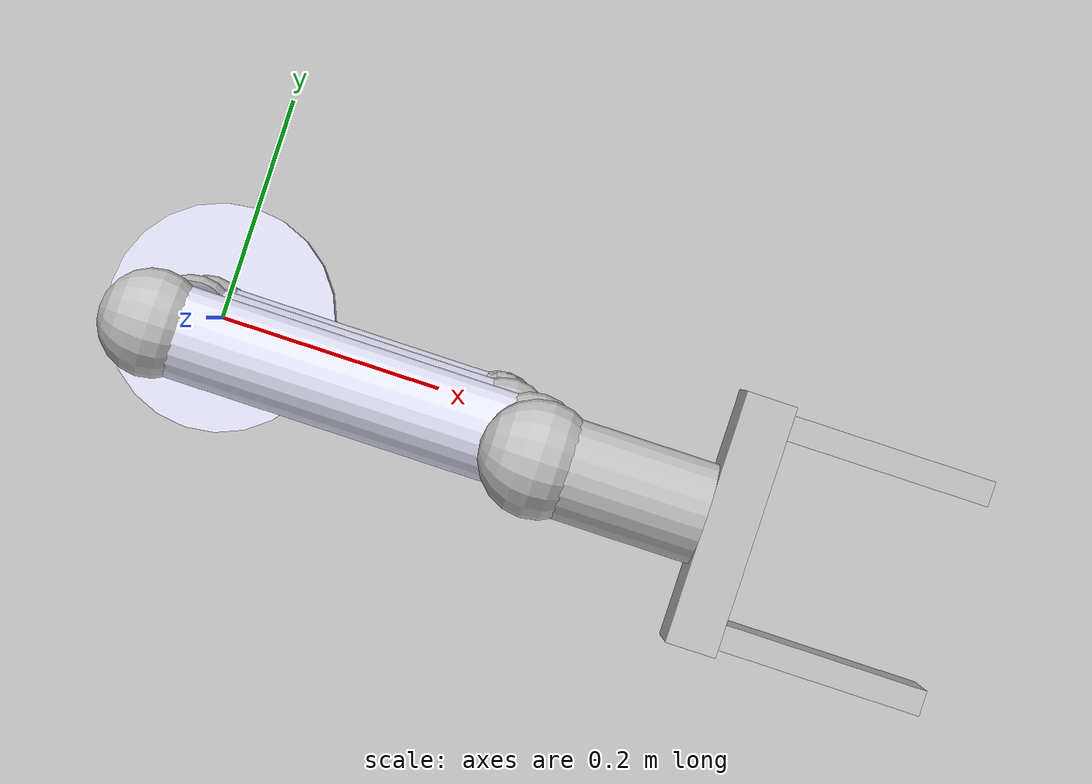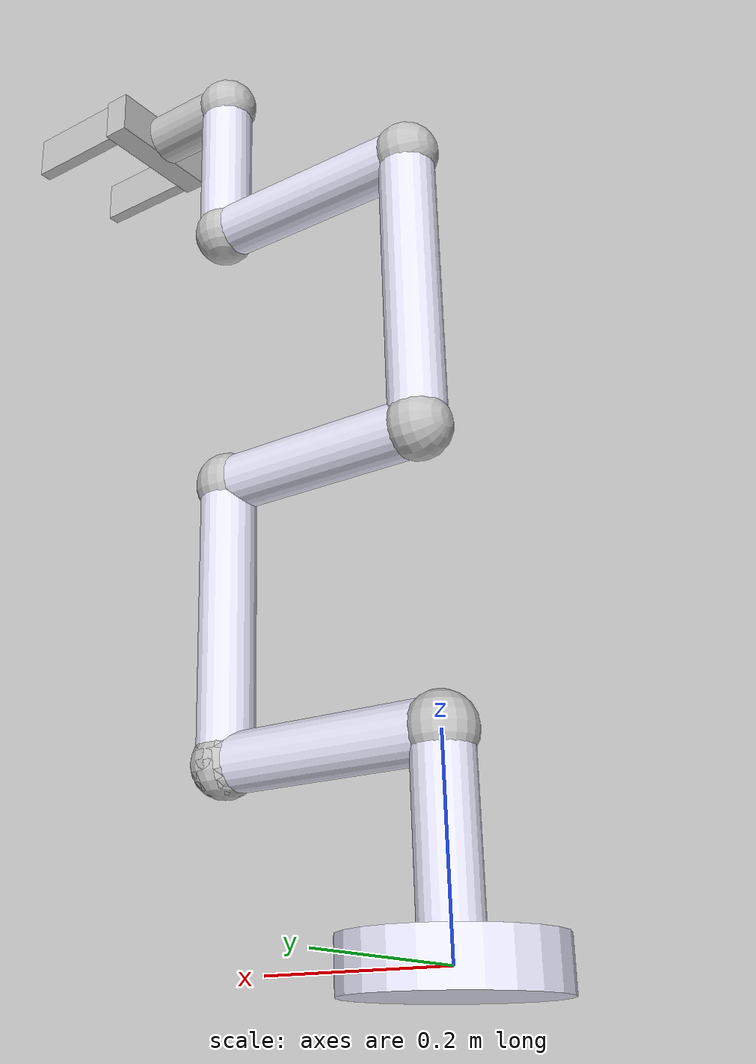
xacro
<?xml version="1.0"?>
<robot xmlns:xacro="http://www.ros.org/wiki/xacro" name="six-axis">
    <xacro:arg name="initial_positions_file" default="initial_positions.yaml" />

    <!-- Import six-axis urdf file -->
    <xacro:include filename="$(find arm_description)/urdf/arm.urdf.xacro" />

    <!-- Import control_xacro -->
    <xacro:include filename="six-axis.ros2_control.xacro" />

    <xacro:six-axis_ros2_control name="FakeSystem" initial_positions_file="$(arg initial_positions_file)"/>

</robot>

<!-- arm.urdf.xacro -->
<robot name="six-axis" xmlns:ros2_control="http://www.ros.org/wiki/ros2_control">

    <material name="gray">
        <color rgba="0.75 0.75 0.75 1.0"/>
    </material>

    <material name="silver">
        <color rgba="0.9 0.9 0.98 1.0"/>
    </material>

    <!-- Base Link -->
    <link name="base_link">
    </link>

    <joint name="j0" type="fixed">
        <origin rpy="0.0 0.0 0.0" xyz="0.0 0.0 0.0"/>
        <parent link="base_link"/>
        <child link="l0"/>
        <axis xyz="0.0 0.0 0.0"/>
        <limit effort="0.0" lower="0.0" upper="0.0" velocity="0.0"/>
    </joint>

    <link name="l0">
        <inertial>
            <origin xyz="0 0 0.025"/>
            <mass value="12.0"/>
            <inertia
                ixx="0.004" ixy="0.0" ixz="0.0"
                iyy="0.004" iyz="0.0"
                izz="0.003"/>
        </inertial>

        <visual>
            <geometry>
                <cylinder length="0.05" radius="0.1"/>
            </geometry>
            <origin rpy="0.0 0.0 0.0" xyz="0.0 0.0 0.0"/>
            <material name="silver"/>
        </visual>
        <collision>
            <geometry>
                <cylinder length="0.05" radius="0.1"/>
            </geometry>
            <origin rpy="0.0 0.0 0.0" xyz="0.0 0.0 0.0"/>
        </collision>
    </link>

    <joint name="j1" type="revolute">
        <origin rpy="0.0 0.0 0.0" xyz="0.0 0.0 0.0"/>
        <parent link="l0"/>
        <child link="l1"/>
        <axis xyz="0.0 0.0 1.0"/>
        <limit effort="20.0" lower="-6.283185307179586" upper="6.283185307179586" velocity="2.0"/>
        <dynamics damping="0.2" friction="0.05"/>
    </joint>

    <link name="l1">
        <inertial>
        <origin xyz="0 0 0.1"/>
        <mass value="2.5"/>
        <inertia
            ixx="0.010" ixy="0.0" ixz="0.0"
            iyy="0.010" iyz="0.0"
            izz="0.006"/>
        </inertial>

        <visual>
            <geometry>
                <cylinder length="0.2" radius="0.03"/>
            </geometry>
            <origin rpy="0.0 0.0 0.0" xyz="0.0 0.0 0.1"/>
            <material name="silver"/>
        </visual>
        <visual>
            <geometry>
                <sphere radius="0.035"/>
            </geometry>
            <origin rpy="0.0 0.0 0.0" xyz="0.0 0.0 0.2"/>
            <material name="gray"/>
        </visual>
        <collision>
            <geometry>
                <cylinder length="0.2" radius="0.03"/>
            </geometry>
            <origin rpy="0.0 0.0 0.0" xyz="0.0 0.0 0.1"/>
        </collision>
        <collision>
            <geometry>
                <sphere radius="0.035"/>
            </geometry>
            <origin rpy="0.0 0.0 0.0" xyz="0.0 0.0 0.2"/>
        </collision>
    </link>

  <!-- Dummy l1 and l2 -->
  <joint name="j_dummy_1_2" type="fixed">
    <origin rpy="0.0 0.0 0.0" xyz="0.0 0.0 0.2"/>
    <parent link="l1"/>
    <child link="l2"/>
  </joint>

  <link name="l2">
    <inertial>
    <origin xyz="0.125 0 0"/>
    <mass value="3.0"/>
    <inertia
        ixx="0.022" ixy="0.0" ixz="0.0"
        iyy="0.030" iyz="0.0"
        izz="0.015"/>
    </inertial>

    <visual>
      <geometry>
        <cylinder length="0.25" radius="0.03"/>
      </geometry>
      <origin rpy="0.0 1.5707963267948966 0.0" xyz="0.125 0.0 0.0"/>
      <material name="silver"/>
    </visual>
    <visual>
      <geometry>
        <sphere radius="0.035"/>
      </geometry>
      <origin rpy="0.0 0.0 0.0" xyz="0.25 0.0 0.0"/>
      <material name="gray"/>
    </visual>
    <collision>
      <geometry>
        <cylinder length="0.25" radius="0.03"/>
      </geometry>
      <origin rpy="0.0 1.5707963267948966 0.0" xyz="0.125 0.0 0.0"/>
    </collision>
    <collision>
      <geometry>
        <sphere radius="0.035"/>
      </geometry>
      <origin rpy="0.0 0.0 0.0" xyz="0.25 0.0 0.0"/>
    </collision>
  </link>

  <joint name="j2" type="revolute">
    <origin rpy="0.0 1.5707963267948966 0.0" xyz="0.25 0.0 0.0"/>
    <parent link="l2"/>
    <child link="l3"/>
    <axis xyz="0.0 0.0 1.0"/>
    <limit effort="20.0" lower="-1.5707963267948966" upper="1.5707963267948966" velocity="2.0"/>
    <dynamics damping="0.2" friction="0.05"/>

  </joint>

  <link name="l3">
    <inertial>
    <origin xyz="-0.15 0 0"/>
    <mass value="2.5"/>
    <inertia
        ixx="0.015" ixy="0.0" ixz="0.0"
        iyy="0.020" iyz="0.0"
        izz="0.010"/>
    </inertial>

    <visual>
      <geometry>
        <cylinder length="0.3" radius="0.03"/>
      </geometry>
      <origin rpy="0.0 1.5707963267948966 0.0" xyz="-0.15 0.0 0.0"/>
      <material name="silver"/>
    </visual>
    <visual>
      <geometry>
        <sphere radius="0.035"/>
      </geometry>
      <origin rpy="0.0 0.0 0.0" xyz="0.0 0.0 0.0"/>
      <material name="gray"/>
    </visual>
    <collision>
      <geometry>
        <cylinder length="0.3" radius="0.03"/>
      </geometry>
      <origin rpy="0.0 1.5707963267948966 0.0" xyz="-0.15 0.0 0.0"/>
    </collision>
    <collision>
      <geometry>
        <sphere radius="0.035"/>
      </geometry>
      <origin rpy="0.0 0.0 0.0" xyz="0.0 0.0 0.0"/>
    </collision>
  </link>

  <joint name="j3" type="revolute">
    <origin rpy="0.0 0.0 0.0" xyz="-0.30 0.0 0.0"/>
    <parent link="l3"/>
    <child link="l4"/>
    <axis xyz="0.0 0.0 1.0"/>
    <limit effort="20.0" lower="-1.5707963267948966" upper="1.5707963267948966" velocity="2.0"/>
    <dynamics damping="0.2" friction="0.05"/>

  </joint>

  <link name="l4">
    <inertial>
    <origin xyz="0 0 -0.12"/>
    <mass value="1.2"/>
    <inertia
        ixx="0.004" ixy="0.0" ixz="0.0"
        iyy="0.006" iyz="0.0"
        izz="0.003"/>
    </inertial>

    <visual>
      <geometry>
        <cylinder length="0.24" radius="0.03"/>
      </geometry>
      <origin rpy="0.0 0.0 0.0" xyz="0.0 0.0 -0.12"/>
      <material name="silver"/>
    </visual>
    <visual>
      <geometry>
        <sphere radius="0.035"/>
      </geometry>
      <origin rpy="0.0 0.0 0.0" xyz="0.0 0.0 0.0"/>
      <material name="gray"/>
    </visual>
    <collision>
      <geometry>
        <cylinder length="0.24" radius="0.03"/>
      </geometry>
      <origin rpy="0.0 0.0 0.0" xyz="0.0 0.0 -0.12"/>
    </collision>
    <collision>
      <geometry>
        <sphere radius="0.035"/>
      </geometry>
      <origin rpy="0.0 0.0 0.0" xyz="0.0 0.0 0.0"/>
    </collision>
  </link>

  <!-- Dummy l4 and l5 -->
  <joint name="j_dummy" type="fixed">
    <origin rpy="0.0 0.0 0.0" xyz="0.0 0.0 -0.24"/>
    <parent link="l4"/>
    <child link="l5"/>
  </joint>

  <link name="l5">
    <inertial>
    <origin xyz="-0.16 0 0"/>
    <mass value="1.0"/>
    <inertia
        ixx="0.003" ixy="0.0" ixz="0.0"
        iyy="0.004" iyz="0.0"
        izz="0.002"/>
    </inertial>

    <visual>
      <geometry>
        <cylinder length="0.32" radius="0.03"/>
      </geometry>
      <origin rpy="0.0 1.5707963267948966 0.0" xyz="-0.16 0.0 0.0"/>
      <material name="silver"/>
    </visual>
    <visual>
      <geometry>
        <sphere radius="0.035"/>
      </geometry>
      <origin rpy="0.0 0.0 0.0" xyz="0.0 0.0 0.0"/>
      <material name="gray"/>
    </visual>
    <collision>
      <geometry>
        <cylinder length="0.32" radius="0.03"/>
      </geometry>
      <origin rpy="0.0 1.5707963267948966 0.0" xyz="-0.16 0.0 0.0"/>
    </collision>
    <collision>
      <geometry>
        <sphere radius="0.035"/>
      </geometry>
      <origin rpy="0.0 0.0 0.0" xyz="0.0 0.0 0.0"/>
    </collision>
  </link>

  <joint name="j4" type="revolute">
    <origin rpy="0.0 0.0 0.0" xyz="-0.32 0.0 0.0"/>
    <parent link="l5"/>
    <child link="l6"/>
    <axis xyz="0.0 0.0 1.0"/>
    <limit effort="20.0" lower="-1.5707963267948966" upper="1.5707963267948966" velocity="2.0"/>
    <dynamics damping="0.2" friction="0.05"/>

  </joint>

  <link name="l6">
    <inertial>
    <origin xyz="0 0 0.125"/>
    <mass value="0.8"/>
    <inertia
        ixx="0.002" ixy="0.0" ixz="0.0"
        iyy="0.002" iyz="0.0"
        izz="0.0015"/>
    </inertial>

    <visual>
      <geometry>
        <cylinder length="0.25" radius="0.03"/>
      </geometry>
      <origin rpy="0.0 0.0 0.0" xyz="0.0 0.0 0.125"/>
      <material name="silver"/>
    </visual>
    <visual>
      <geometry>
        <sphere radius="0.035"/>
      </geometry>
      <origin rpy="0.0 0.0 0.0" xyz="0.0 0.0 0.0"/>
      <material name="gray"/>
    </visual>
    <collision>
      <geometry>
        <cylinder length="0.25" radius="0.03"/>
      </geometry>
      <origin rpy="0.0 0.0 0.0" xyz="0.0 0.0 0.125"/>
    </collision>
    <collision>
      <geometry>
        <sphere radius="0.035"/>
      </geometry>
      <origin rpy="0.0 0.0 0.0" xyz="0.0 0.0 0.0"/>
    </collision>
  </link>

  <joint name="j5" type="revolute">
    <origin rpy="0.0 -1.5707963267948966 0.0" xyz="0.0 0.0 0.25"/>
    <parent link="l6"/>
    <child link="le"/>
    <axis xyz="0.0 0.0 1.0"/>
    <limit effort="20.0" lower="-3.141592653589793" upper="3.141592653589793" velocity="2.0"/>
    <dynamics damping="0.2" friction="0.05"/>

  </joint>

  <link name="le">
    <inertial>
    <origin xyz="0 0 0.09"/>
    <mass value="0.6"/>
    <inertia
        ixx="0.0015" ixy="0.0" ixz="0.0"
        iyy="0.0015" iyz="0.0"
        izz="0.0010"/>
    </inertial>

    <visual>
      <geometry>
        <cylinder length="0.18" radius="0.03"/>
      </geometry>
      <origin rpy="0.0 0.0 0.0" xyz="0.0 0.0 0.09"/>
      <material name="silver"/>
    </visual>
    <visual>
      <geometry>
        <sphere radius="0.035"/>
      </geometry>
      <origin rpy="0.0 0.0 0.0" xyz="0.0 0.0 0.0"/>
      <material name="gray"/>
    </visual>
    <collision>
      <geometry>
        <cylinder length="0.18" radius="0.03"/>
      </geometry>
      <origin rpy="0.0 0.0 0.0" xyz="0.0 0.0 0.09"/>
    </collision>
    <collision>
      <geometry>
        <sphere radius="0.035"/>
      </geometry>
      <origin rpy="0.0 0.0 0.0" xyz="0.0 0.0 0.0"/>
    </collision>
  </link>

  <joint name="j6" type="revolute">
    <origin rpy="0.0 1.5707963267948966 0.0" xyz="0.0 0.0 0.18"/>
    <parent link="le"/>
    <child link="le_1"/>
    <axis xyz="0.0 0.0 1.0"/>
    <limit effort="20.0" lower="-6.283185307179586" upper="6.283185307179586" velocity="2.0"/>
    <dynamics damping="0.2" friction="0.05"/>

  </joint>

  <link name="le_1">
    <inertial>
    <origin xyz="0 0 0.05"/>
    <mass value="0.4"/>
    <inertia
        ixx="0.0010" ixy="0.0" ixz="0.0"
        iyy="0.0010" iyz="0.0"
        izz="0.0007"/>
    </inertial>

    <visual>
      <geometry>
        <cylinder length="0.1" radius="0.03"/>
      </geometry>
      <origin rpy="0.0 0.0 0.0" xyz="0.0 0.0 0.05"/>
      <material name="gray"/>
    </visual>
    <visual>
      <geometry>
        <sphere radius="0.035"/>
      </geometry>
      <origin rpy="0.0 0.0 0.0" xyz="0.0 0.0 0.0"/>
      <material name="gray"/>
    </visual>
    <collision>
      <geometry>
        <cylinder length="0.1" radius="0.03"/>
      </geometry>
      <origin rpy="0.0 0.0 0.0" xyz="0.0 0.0 0.05"/>
    </collision>
    <collision>
      <geometry>
        <sphere radius="0.035"/>
      </geometry>
      <origin rpy="0.0 0.0 0.0" xyz="0.0 0.0 0.0"/>
    </collision>
  </link>

  <!-- Connect wrist to gripper base -->
  <joint name="le_1_to_g_base" type="fixed">
    <origin rpy="0 0 0" xyz="0 0 0.1"/>
    <parent link="le_1"/>
    <child link="g_base"/>
  </joint>

  <!-- Gripper base -->
  <link name="g_base">
    <visual>
      <geometry>
        <box size="0.05 0.15 0.03"/>
      </geometry>
      <origin xyz="0 0 0.015"/>
      <material name="gray"/>
    </visual>
    <collision>
      <geometry>
        <box size="0.05 0.15 0.03"/>
      </geometry>
      <origin xyz="0 0 0.015"/>
    </collision>
    <inertial>
    <origin xyz="0 0 0.015"/>
    <mass value="0.5"/>
    <inertia
        ixx="0.0025" ixy="0.0" ixz="0.0"
        iyy="0.0015" iyz="0.0"
        izz="0.0025"/>
    </inertial>

  </link>

  <!-- Gripper Right Finger -->
  <link name="gripper_right_finger">
    <visual>
      <geometry>
        <box size="0.05 0.015 0.12"/>
      </geometry>
      <origin xyz="0 0.0075 0.06"/>
      <material name="gray"/>
    </visual>
    <collision>
      <geometry>
        <box size="0.05 0.015 0.12"/>
      </geometry>
      <origin xyz="0 0.0075 0.06"/>
    </collision>
    <inertial>
    <origin xyz="0 0.0075 0.06"/>
    <mass value="0.1"/>
    <inertia
        ixx="0.00010" ixy="0.0" ixz="0.0"
        iyy="0.00012" iyz="0.0"
        izz="0.00002"/>
    </inertial>

  </link>

  <joint name="gripper_right_finger_joint" type="prismatic">
    <axis xyz="0 1 0"/>
    <origin xyz="0.0 -0.07 0.03" rpy="0.0 0.0 0.0"/>
    <parent link="g_base"/>
    <child link="gripper_right_finger"/>
    <limit effort="100.0" lower="0.0" upper="0.05" velocity="1.0"/>
    <dynamics damping="2.0" friction="1.0"/>

  </joint>

  <!-- Gripper Left Finger -->
  <link name="gripper_left_finger">
    <visual>
      <geometry>
        <box size="0.05 0.015 0.12"/>
      </geometry>
      <origin xyz="0 -0.0075 0.06"/>
      <material name="gray"/>
    </visual>
    <collision>
      <geometry>
        <box size="0.05 0.015 0.12"/>
      </geometry>
      <origin xyz="0 -0.0075 0.06"/>
    </collision>
    <inertial>
    <origin xyz="0 -0.0075 0.06"/>
    <mass value="0.1"/>
    <inertia
        ixx="0.00010" ixy="0.0" ixz="0.0"
        iyy="0.00012" iyz="0.0"
        izz="0.00002"/>
    </inertial>

  </link>

  <joint name="gripper_left_finger_joint" type="prismatic">
    <axis xyz="0 1 0"/>
    <origin xyz="0.0 0.07 0.03" rpy="0.0 0.0 0.0"/>
    <parent link="g_base"/>
    <child link="gripper_left_finger"/>
    <limit effort="100.0" lower="-0.05" upper="0.0" velocity="1.0"/>
    <dynamics damping="2.0" friction="1.0"/>

    <mimic joint="gripper_right_finger_joint" multiplier="-1" offset="0"/>
  </joint>

  <!-- Tool Center Point (TCP) / End Effector Frame -->
  <link name="tool0"/>

  <joint name="g_base_to_tool0" type="fixed">
    <origin xyz="0 0 0.15" rpy="0 0 0"/>
    <parent link="g_base"/>
    <child link="tool0"/>
  </joint>

  <!-- Ros2_Control -->
  <ros2_control name="GazeboSimSystem" type="system">
    <hardware>
      <plugin>gz_ros2_control/GazeboSimSystem</plugin>
    </hardware>

    <joint name="j1">
      <command_interface name="position">
        <param name="min">-6.283185307179586</param>
        <param name="max">6.283185307179586</param>
      </command_interface>
      <command_interface name="velocity">
        <param name="min">-2.0</param>
        <param name="max">2.0</param>
      </command_interface>
      <state_interface name="position">
        <param name="initial_value">0.0</param>
      </state_interface>
      <state_interface name="velocity"/>
      <state_interface name="effort"/>
    </joint>

    <joint name="j2">
      <command_interface name="position">
        <param name="min">-1.5707963267948966</param>
        <param name="max">1.5707963267948966</param>
      </command_interface>
      <command_interface name="velocity">
        <param name="min">-2.0</param>
        <param name="max">2.0</param>
      </command_interface>
      <state_interface name="position">
        <param name="initial_value">0.0</param>
      </state_interface>
      <state_interface name="velocity"/>
      <state_interface name="effort"/>
    </joint>

    <joint name="j3">
      <command_interface name="position">
        <param name="min">-1.5707963267948966</param>
        <param name="max">1.5707963267948966</param>
      </command_interface>
      <command_interface name="velocity">
        <param name="min">-2.0</param>
        <param name="max">2.0</param>
      </command_interface>
      <state_interface name="position">
        <param name="initial_value">0.0</param>
      </state_interface>
      <state_interface name="velocity"/>
      <state_interface name="effort"/>
    </joint>

    <joint name="j4">
      <command_interface name="position">
        <param name="min">-1.5707963267948966</param>
        <param name="max">1.5707963267948966</param>
      </command_interface>
      <command_interface name="velocity">
        <param name="min">-2.0</param>
        <param name="max">2.0</param>
      </command_interface>
      <state_interface name="position">
        <param name="initial_value">0.0</param>
      </state_interface>
      <state_interface name="velocity"/>
      <state_interface name="effort"/>
    </joint>

    <joint name="j5">
      <command_interface name="position">
        <param name="min">-3.141592653589793</param>
        <param name="max">3.141592653589793</param>
      </command_interface>
      <command_interface name="velocity">
        <param name="min">-2.0</param>
        <param name="max">2.0</param>
      </command_interface>
      <state_interface name="position">
        <param name="initial_value">0.0</param>
      </state_interface>
      <state_interface name="velocity"/>
      <state_interface name="effort"/>
    </joint>

    <joint name="j6">
      <command_interface name="position">
        <param name="min">-6.283185307179586</param>
        <param name="max">6.283185307179586</param>
      </command_interface>
      <command_interface name="velocity">
        <param name="min">-2.0</param>
        <param name="max">2.0</param>
      </command_interface>
      <state_interface name="position">
        <param name="initial_value">0.0</param>
      </state_interface>
      <state_interface name="velocity"/>
      <state_interface name="effort"/>
    </joint>

    <joint name="gripper_right_finger_joint">
      <command_interface name="position">
        <param name="min">0.0</param>
        <param name="max">0.05</param>
      </command_interface>
      <state_interface name="position">
        <param name="initial_value">0.0</param>
      </state_interface>
      <state_interface name="velocity"/>
      <state_interface name="effort"/>
    </joint>

    <joint name="gripper_left_finger_joint">
      <command_interface name="position">
        <param name="min">-0.05</param>
        <param name="max">0.0</param>
      </command_interface>
      <state_interface name="position">
        <param name="initial_value">0.0</param>
      </state_interface>
      <state_interface name="velocity"/>
      <state_interface name="effort"/>
    </joint>
  </ros2_control>

  <!-- Gazebo Plugins -->
  <gazebo>
    <disableFixedJointLumping>true</disableFixedJointLumping>
  </gazebo>

  <gazebo>
    <plugin filename="gz-sim-joint-state-publisher-system" name="gz::sim::systems::JointStatePublisher">
      <topic>joint_states</topic>
      <joint_name>world_joint</joint_name>
      <joint_name>j1</joint_name>
      <joint_name>j2</joint_name>
      <joint_name>j3</joint_name>
      <joint_name>j4</joint_name>
      <joint_name>j5</joint_name>
      <joint_name>j6</joint_name>
      <joint_name>gripper_left_finger_joint</joint_name>
      <joint_name>gripper_right_finger_joint</joint_name>
    </plugin>
  </gazebo>

  <gazebo>
  <plugin filename="libgz_ros2_control-system.so"
          name="gz_ros2_control::GazeboSimROS2ControlPlugin">
    <parameters>$(find arm_description)/config/ros2_controllers.yaml</parameters>
    <controller_manager_node_name>controller_manager</controller_manager_node_name>
  </plugin>
</gazebo>

</robot>
